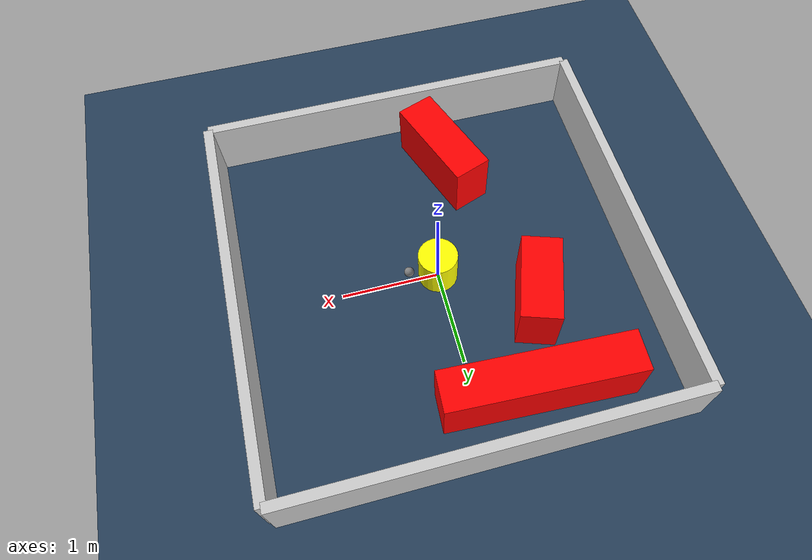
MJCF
<?xml version="1.0" ?>
<mujoco model="generated_environment">
  <option timestep="0.01" integrator="RK4" cone="elliptic"/>
  <default>
    <geom density="1"/>
  </default>
  <asset>
    <texture builtin="gradient" height="3072" rgb1="0.3 0.5 0.7" rgb2="0 0 0" type="skybox" width="512"/>
    <texture builtin="checker" height="300" mark="edge" markrgb="0.8 0.8 0.8" name="groundplane" rgb1="0.2 0.3 0.4" rgb2="0.1 0.2 0.3" type="2d" width="300"/>
    <material name="groundplane" reflectance="0.2" texrepeat="5 5" texture="groundplane" texuniform="true"/>
    <material name="robot" rgba="0.0 1.0 0.0 1"/>
  </asset>
  <worldbody>
    <light dir="0 0 -1" directional="true" pos="0 0 1.5"/>
    <geom condim="4" friction="1.0 0.005 0.001" material="groundplane" name="floor" size="0 0 0.05" type="plane"/>
    <body name="walls">
      <geom name="wall_1" condim="4" pos="-2.0 0.0 0.3" rgba="0.800000011920929 0.800000011920929 0.800000011920929 1.0" size="0.05 2.0 0.3" type="box"/>
      <geom name="wall_2" condim="4" pos="2.0 0.0 0.3" rgba="0.800000011920929 0.800000011920929 0.800000011920929 1.0" size="0.05 2.0 0.3" type="box"/>
      <geom name="wall_3" condim="4" pos="0.0 -2.0 0.3" rgba="0.800000011920929 0.800000011920929 0.800000011920929 1.0" size="2.0 0.05 0.3" type="box"/>
      <geom name="wall_4" condim="4" pos="0.0 2.0 0.3" rgba="0.800000011920929 0.800000011920929 0.800000011920929 1.0" size="2.0 0.05 0.3" type="box"/>
    </body>
    <body name="robot">
      <joint name="joint_x" type="slide" pos="0 0 0" axis="1 0 0"/>
      <joint name="joint_y" type="slide" pos="0 0 0" axis="0 1 0"/>
      <geom name="robot" type="sphere" pos="0.3 0.0 0.2" size="0.05" mass="5." friction="1.0 0.005 0.0001" condim="4" rgba="0.5 0.5 0.5 1.0"/>
      <site name="sensor_ball"/>
    </body>
    <body name="obstacle_movable_1">
      <geom name="obstacle_movable_1" condim="4" pos="0.0 0.0 0.2" euler="0 0 0.0" friction="1.0 0.005 0.001" rgba="1.0 1.0 0.0 1.0" size="0.2 0.2 0.0" type="cylinder" mass="0.1"/>
      <joint type="free"/>
    </body>
    <body name="obstacle_2_static">
      <geom name="obstacle_2_static" condim="4" pos="-0.8624271967413414 0.580133416750719 0.3" euler="0 0 71.12903413245645" friction="1.0 0.005 0.001" rgba="1 0 0 1" size="0.4342889830094464 0.2 0.3" type="box"/>
    </body>
    <body name="obstacle_3_static">
      <geom name="obstacle_3_static" condim="4" pos="-0.4001294965343132 -1.2921620378009215 0.3" euler="0 0 290.1932610523073" friction="1.0 0.005 0.001" rgba="1 0 0 1" size="0.5361691481533486 0.2 0.3" type="box"/>
    </body>
    <body name="obstacle_4_static">
      <geom name="obstacle_4_static" condim="4" pos="-0.5716847484238969 1.4737628502242723 0.3" euler="0 0 357.32585581824407" friction="1.0 0.005 0.001" rgba="1 0 0 1" size="0.9433983547421922 0.2 0.3" type="box"/>
    </body>
  </worldbody>
  <actuator>
    <motor name="actuator_x" joint="joint_x" gear="1" ctrlrange="-1 1"/>
    <motor name="actuator_y" joint="joint_y" gear="1" ctrlrange="-1 1"/>
  </actuator>
</mujoco>
